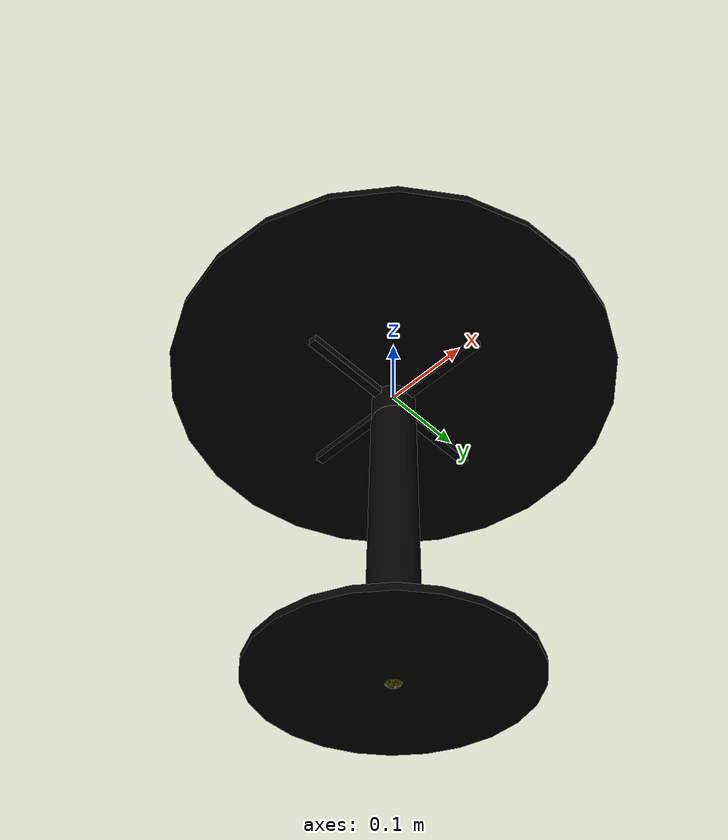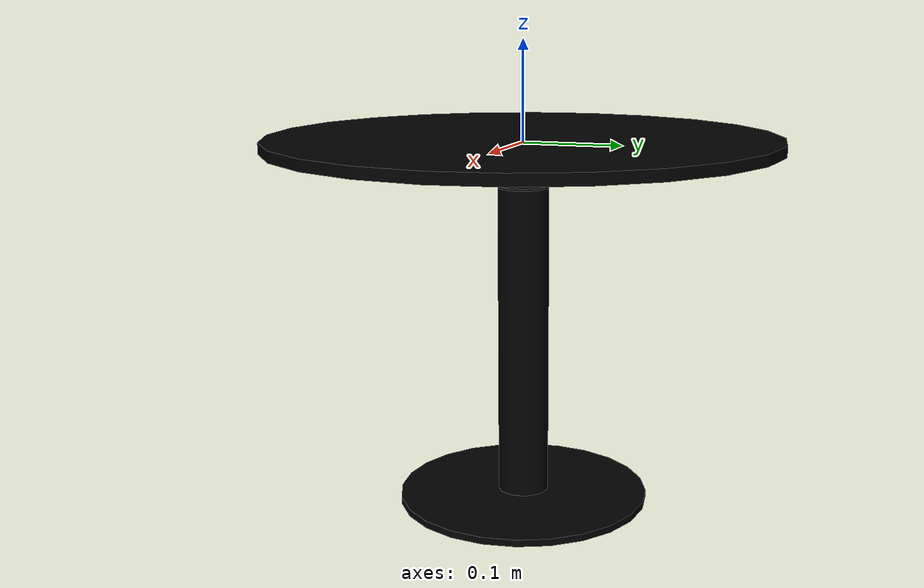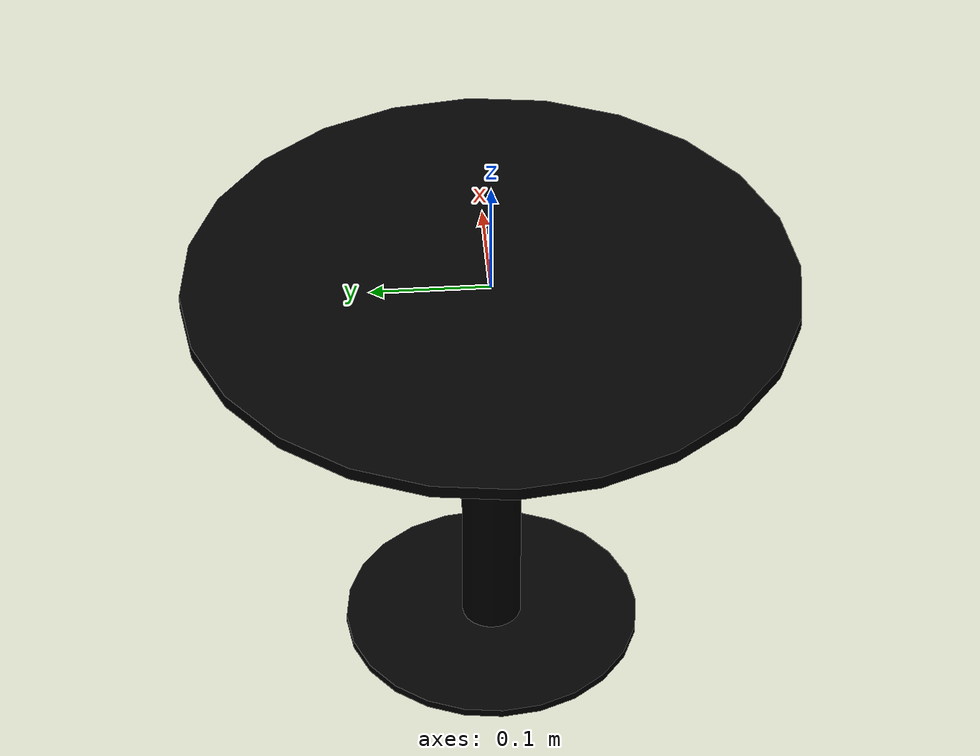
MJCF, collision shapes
<mujoco model="table_billsta_round_0189">
    <custom>
        <numeric data="-0.277193 0.164597 0.005623 -0.0 -0.995185 0.098017 0.0" name="0_part0_initpos"/>
        <numeric data="-0.052777 -0.175435 0.020932 0.0 0.635549 -0.772061 0.0" name="3_part3_initpos"/>
        <numeric data="0.190382 0.214882 0.003466 0.999863 -0.0 0.0 0.016557" name="2_part2_initpos"/>
        <numeric data="0.220945 -0.030634 0.025543 0.707107 3e-06 -0.707107 3e-06" name="1_part1_initpos"/>
    </custom>
    <asset>
        <mesh file="table_billsta_round_0189/0.stl" name="part0"
              scale="0.0005039999999999999 0.0005039999999999999 0.0005039999999999999"/>
        <mesh file="table_billsta_round_0189/4.stl" name="part3"
              scale="0.0005039999999999999 0.0005039999999999999 0.0005039999999999999"/>
        <mesh file="table_billsta_round_0189/2.stl" name="part2"
              scale="0.0005039999999999999 0.0005039999999999999 0.0005039999999999999"/>
        <mesh file="table_billsta_round_0189/1.stl" name="part1"
              scale="0.0005039999999999999 0.0005039999999999999 0.0005039999999999999"/>
    </asset>
    <equality>
        <weld active="false" body1="0_part0" body2="3_part3" solimp="1 1 0.5" solref="0.01 0.3"/>
        <weld active="false" body1="3_part3" body2="1_part1" solimp="1 1 0.5" solref="0.01 0.3"/>
        <weld active="false" body1="1_part1" body2="2_part2" solimp="1 1 0.5" solref="0.01 0.3"/>
    </equality>
    <worldbody>
        <body name="0_part0" pos="2.7215999999999998e-09 3.5783999999999996e-09 -0.0" quat="1 0 0 0">
            <geom conaffinity="0" contype="0" density="0" mesh="part0" name="0_part0_mesh" pos="0.0 0.0 0.0"
                  rgba="0.82 0.71 0.55 1" type="mesh"/>
            <site name="0_part0_horizontal_radius_site" pos="2.7215999999999998e-09 3.5783999999999996e-09 -0.0"
                  quat="1 0 0 0" rgba="0 0 0 0" size="0.01"/>
            <site name="0_part0_top_site" pos="2.7215999999999998e-09 3.5279999999999994e-09 0.0064008061487999994"
                  quat="1 0 0 0" rgba="0 0 0 0" size="0.01"/>
            <site name="0_part0_bottom_site" pos="2.7215999999999998e-09 3.5279999999999994e-09 -0.0064008061487999994"
                  quat="1 0 0 0" rgba="0 0 0 0" size="0.01"/>
            <site name="0_part0_corner_site8" pos="-0.256032 0.256032015372 0.0064008061487999994" quat="1 0 0 0"
                  rgba="0 0 0 0" size="0.01008"/>
            <site name="0_part0_corner_site7" pos="0.2560320054432 0.256032015372 0.0064008061487999994" quat="1 0 0 0"
                  rgba="0 0 0 0" size="0.01008"/>
            <site name="0_part0_corner_site6" pos="0.2560320054432 -0.25603200826559996 0.0064008061487999994"
                  quat="1 0 0 0" rgba="0 0 0 0" size="0.01008"/>
            <site name="0_part0_corner_site5" pos="-0.256032 -0.25603200826559996 0.0064008061487999994" quat="1 0 0 0"
                  rgba="0 0 0 0" size="0.01008"/>
            <site name="0_part0_corner_site4" pos="-0.256032 0.256032015372 -0.0064008061487999994" quat="1 0 0 0"
                  rgba="0 0 0 0" size="0.01008"/>
            <site name="0_part0_corner_site3" pos="0.2560320054432 0.256032015372 -0.0064008061487999994" quat="1 0 0 0"
                  rgba="0 0 0 0" size="0.01008"/>
            <site name="0_part0_corner_site2" pos="0.2560320054432 -0.25603200826559996 -0.0064008061487999994"
                  quat="1 0 0 0" rgba="0 0 0 0" size="0.01008"/>
            <site name="0_part0_corner_site1" pos="-0.256032 -0.25603200826559996 -0.0064008061487999994" quat="1 0 0 0"
                  rgba="0 0 0 0" size="0.01008"/>
            <site name="top-connector,conn_site1" pos="5.04e-09 0.0 -0.00600075" quat="1 0 0 0"
                  rgba="0.9019 0.0980 0.2941 0.3" size="0.01"/>
            <geom density="50" name="noviz_collision_0_part0_0" pos="-4.613616e-05 1.946448e-05 0.00011864664"
                  quat="1 0 0 0" rgba="0 0 0 0" size="0.255985884 0.0055439999999999994" solref="0.001 1"
                  type="cylinder"/>
        </body>
        <body name="3_part3" pos="5.4431999999999996e-09 -2.52e-10 -0.028003499999999997" quat="1 0 0 0">
            <geom conaffinity="0" contype="0" density="0" mesh="part3" name="3_part3_mesh" pos="0.0 0.0 0.0"
                  rgba="0.82 0.71 0.55 1" type="mesh"/>
            <site name="3_part3_horizontal_radius_site" pos="0.0 -2.52e-10 -0.0" quat="1 0 0 0" rgba="0 0 0 0"
                  size="0.01"/>
            <site name="3_part3_top_site" pos="0.0 -2.52e-10 0.022402806148800004" quat="1 0 0 0" rgba="0 0 0 0"
                  size="0.01"/>
            <site name="3_part3_bottom_site" pos="0.0 -2.52e-10 -0.022402806148800004" quat="1 0 0 0" rgba="0 0 0 0"
                  size="0.01"/>
            <site name="3_part3_corner_site8" pos="-0.128016 0.12801600771119998 0.022402806148800004" quat="1 0 0 0"
                  rgba="0 0 0 0" size="0.01008"/>
            <site name="3_part3_corner_site7" pos="0.128016 0.12801600771119998 0.022402806148800004" quat="1 0 0 0"
                  rgba="0 0 0 0" size="0.01008"/>
            <site name="3_part3_corner_site6" pos="0.128016 -0.12801600826559997 0.022402806148800004" quat="1 0 0 0"
                  rgba="0 0 0 0" size="0.01008"/>
            <site name="3_part3_corner_site5" pos="-0.128016 -0.12801600826559997 0.022402806148800004" quat="1 0 0 0"
                  rgba="0 0 0 0" size="0.01008"/>
            <site name="3_part3_corner_site4" pos="-0.128016 0.12801600771119998 -0.022402806148800004" quat="1 0 0 0"
                  rgba="0 0 0 0" size="0.01008"/>
            <site name="3_part3_corner_site3" pos="0.128016 0.12801600771119998 -0.022402806148800004" quat="1 0 0 0"
                  rgba="0 0 0 0" size="0.01008"/>
            <site name="3_part3_corner_site2" pos="0.128016 -0.12801600826559997 -0.022402806148800004" quat="1 0 0 0"
                  rgba="0 0 0 0" size="0.01008"/>
            <site name="3_part3_corner_site1" pos="-0.128016 -0.12801600826559997 -0.022402806148800004" quat="1 0 0 0"
                  rgba="0 0 0 0" size="0.01008"/>
            <site name="connector-top,conn_site1" pos="0.0 5.04e-09 0.022002749999999998" quat="1 0 0 0"
                  rgba="0.9019 0.0980 0.2941 0.3" size="0.01"/>
            <site name="connector-centerbar,conn_site1" pos="0.0 5.04e-09 -0.0159453" quat="1 0 0 0"
                  rgba="0.2352 0.7058 0.2941 0.3" size="0.01"/>
            <geom density="50" name="noviz_collision_3_part3_0" pos="0.0 -1.008e-08 0.0028034999999999996"
                  quat="1 0 0 0" rgba="0 0 0 0" size="0.025199999999999997 0.01764" solref="0.001 1" type="cylinder"/>
            <geom density="50" name="noviz_collision_3_part3_1" pos="0.0 -1.008e-08 0.015907499999999998" quat="1 0 0 0"
                  rgba="0 0 0 0" size="0.00504 0.126 0.00504" solref="0.001 1" type="box"/>
            <geom density="50" name="noviz_collision_3_part3_2" pos="0.0 -1.008e-08 0.015907499999999998" quat="1 0 0 0"
                  rgba="0 0 0 0" size="0.126 0.00504 0.00504" solref="0.001 1" type="box"/>
        </body>
        <body name="2_part2" pos="5.4431999999999996e-09 -2.52e-10 -0.3672459061488" quat="1 0 0 0">
            <geom conaffinity="0" contype="0" density="0" mesh="part2" name="2_part2_mesh" pos="0.0 0.0 0.0"
                  rgba="0.82 0.71 0.55 1" type="mesh"/>
            <site name="2_part2_horizontal_radius_site" pos="0.0 -2.52e-10 0.0" quat="1 0 0 0" rgba="0 0 0 0"
                  size="0.01"/>
            <site name="2_part2_top_site" pos="0.0 -2.52e-10 0.0032003999999999995" quat="1 0 0 0" rgba="0 0 0 0"
                  size="0.01"/>
            <site name="2_part2_bottom_site" pos="0.0 -2.52e-10 -0.0032003999999999995" quat="1 0 0 0" rgba="0 0 0 0"
                  size="0.01"/>
            <site name="2_part2_corner_site8" pos="-0.128016 0.12801600771119998 0.0032003999999999995" quat="1 0 0 0"
                  rgba="0 0 0 0" size="0.01008"/>
            <site name="2_part2_corner_site7" pos="0.128016 0.12801600771119998 0.0032003999999999995" quat="1 0 0 0"
                  rgba="0 0 0 0" size="0.01008"/>
            <site name="2_part2_corner_site6" pos="0.128016 -0.12801600826559997 0.0032003999999999995" quat="1 0 0 0"
                  rgba="0 0 0 0" size="0.01008"/>
            <site name="2_part2_corner_site5" pos="-0.128016 -0.12801600826559997 0.0032003999999999995" quat="1 0 0 0"
                  rgba="0 0 0 0" size="0.01008"/>
            <site name="2_part2_corner_site4" pos="-0.128016 0.12801600771119998 -0.0032003999999999995" quat="1 0 0 0"
                  rgba="0 0 0 0" size="0.01008"/>
            <site name="2_part2_corner_site3" pos="0.128016 0.12801600771119998 -0.0032003999999999995" quat="1 0 0 0"
                  rgba="0 0 0 0" size="0.01008"/>
            <site name="2_part2_corner_site2" pos="0.128016 -0.12801600826559997 -0.0032003999999999995" quat="1 0 0 0"
                  rgba="0 0 0 0" size="0.01008"/>
            <site name="2_part2_corner_site1" pos="-0.128016 -0.12801600826559997 -0.0032003999999999995" quat="1 0 0 0"
                  rgba="0 0 0 0" size="0.01008"/>
            <site name="bottom-centerbar,conn_site1" pos="0.0 5.04e-09 0.00320042016" quat="1 0 0 0"
                  rgba="1.0 0.8823 0.0980 0.3" size="0.01"/>
            <geom density="50" name="noviz_collision_2_part2_0" pos="0.0 -1.008e-08 0.00015998976" quat="1 0 0 0"
                  rgba="0 0 0 0" size="0.128016 0.0035279999999999995" solref="0.001 1" type="cylinder"/>
        </body>
        <body name="1_part1" pos="3.4775999999999992e-09 8.2656e-09 -0.2040255046368" quat="1 0 0 0">
            <geom conaffinity="0" contype="0" density="0" mesh="part1" name="1_part1_mesh" pos="0.0 0.0 0.0"
                  rgba="0.82 0.71 0.55 1" type="mesh"/>
            <site name="1_part1_horizontal_radius_site" pos="4.0319999999999996e-10 0.0 -1.512e-09" quat="1 0 0 0"
                  rgba="0 0 0 0" size="0.01"/>
            <site name="1_part1_top_site" pos="4.0319999999999996e-10 0.0 0.16002" quat="1 0 0 0" rgba="0 0 0 0"
                  size="0.01"/>
            <site name="1_part1_bottom_site" pos="4.0319999999999996e-10 0.0 -0.160020003024" quat="1 0 0 0"
                  rgba="0 0 0 0" size="0.01"/>
            <site name="1_part1_corner_site8" pos="-0.025603201562399997 0.025603224595199998 0.16002" quat="1 0 0 0"
                  rgba="0 0 0 0" size="0.01008"/>
            <site name="1_part1_corner_site7" pos="0.0256032023688 0.025603224595199998 0.16002" quat="1 0 0 0"
                  rgba="0 0 0 0" size="0.01008"/>
            <site name="1_part1_corner_site6" pos="0.0256032023688 -0.025603224595199998 0.16002" quat="1 0 0 0"
                  rgba="0 0 0 0" size="0.01008"/>
            <site name="1_part1_corner_site5" pos="-0.025603201562399997 -0.025603224595199998 0.16002" quat="1 0 0 0"
                  rgba="0 0 0 0" size="0.01008"/>
            <site name="1_part1_corner_site4" pos="-0.025603201562399997 0.025603224595199998 -0.160020003024"
                  quat="1 0 0 0" rgba="0 0 0 0" size="0.01008"/>
            <site name="1_part1_corner_site3" pos="0.0256032023688 0.025603224595199998 -0.160020003024" quat="1 0 0 0"
                  rgba="0 0 0 0" size="0.01008"/>
            <site name="1_part1_corner_site2" pos="0.0256032023688 -0.025603224595199998 -0.160020003024" quat="1 0 0 0"
                  rgba="0 0 0 0" size="0.01008"/>
            <site name="1_part1_corner_site1" pos="-0.025603201562399997 -0.025603224595199998 -0.160020003024"
                  quat="1 0 0 0" rgba="0 0 0 0" size="0.01008"/>
            <site name="centerbar-connector,conn_site1" pos="0.0 -5.04e-09 0.1600767" quat="1 0 0 0"
                  rgba="0.2352 0.7058 0.2941 0.3" size="0.01"/>
            <site name="centerbar-bottom,conn_site1" pos="0.0 -5.04e-09 -0.16002" quat="1 0 0 0"
                  rgba="1.0 0.8823 0.0980 0.3" size="0.01"/>
            <geom density="50" name="noviz_collision_1_part1_0"
                  pos="1.4797439999999998e-05 -1.3214879999999998e-05 0.00048231288" quat="1 0 0 0" rgba="0 0 0 0"
                  size="0.02561799744 0.15875999999999998" solref="0.001 1" type="cylinder"/>
        </body>
    </worldbody>
    <actuator/>
    <sensor/>
    <contact/>
    <default/>
</mujoco>
